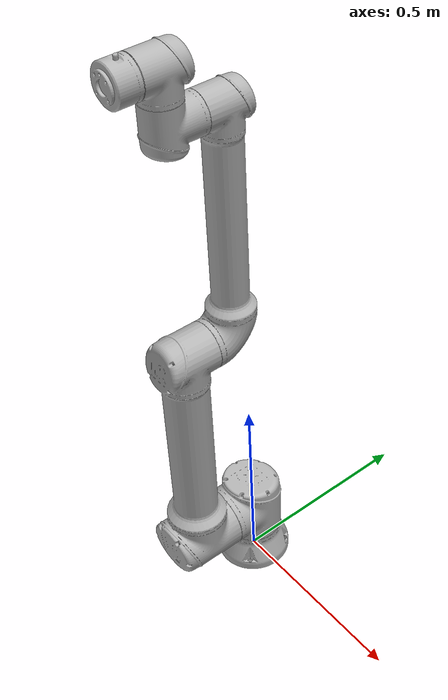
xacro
<?xml version="1.0" ?>
<robot name="URDF_Test_3" xmlns:xacro="http://www.ros.org/wiki/xacro">

<xacro:include filename="$(find ajgar)/urdf/materials.xacro" />
<xacro:include filename="$(find ajgar)/urdf/URDF_Test_3.trans" />
<xacro:include filename="$(find ajgar)/urdf/URDF_Test_3.gazebo" />
<link name="base_link">
  <inertial>
    <origin xyz="-8.269719423545992e-05 0.0010857267036388984 0.06047682470875622" rpy="0 0 0"/>
    <mass value="29.485735477923164"/>
    <inertia ixx="0.024776" iyy="0.028156" izz="0.038965" ixy="7e-06" iyz="0.000408" ixz="-2.2e-05"/>
  </inertial>
  <visual>
    <origin xyz="0 0 0" rpy="0 0 0"/>
    <geometry>
      <mesh filename="package://ajgar/meshes/base_link.stl" scale="0.001 0.001 0.001"/>
    </geometry>
    <material name="silver"/>
  </visual>
  <collision>
    <origin xyz="0 0 0" rpy="0 0 0"/>
    <geometry>
      <mesh filename="package://ajgar/meshes/base_link.stl" scale="0.001 0.001 0.001"/>
    </geometry>
  </collision>
</link>

<link name="shoulder_1">
  <inertial>
    <origin xyz="-5.136379737825127e-07 -0.012893561064329193 0.08338921276398253" rpy="0 0 0"/>
    <mass value="7.491767242063588"/>
    <inertia ixx="0.113371" iyy="0.100756" izz="0.094339" ixy="-0.0" iyz="0.0014" ixz="0.0"/>
  </inertial>
  <visual>
    <origin xyz="0.0 -0.0 -0.0993" rpy="0 0 0"/>
    <geometry>
      <mesh filename="package://ajgar/meshes/shoulder_1.stl" scale="0.001 0.001 0.001"/>
    </geometry>
    <material name="silver"/>
  </visual>
  <collision>
    <origin xyz="0.0 -0.0 -0.0993" rpy="0 0 0"/>
    <geometry>
      <mesh filename="package://ajgar/meshes/shoulder_1.stl" scale="0.001 0.001 0.001"/>
    </geometry>
  </collision>
</link>

<link name="arm_1">
  <inertial>
    <origin xyz="-6.124271792012328e-08 -0.08240844330284518 0.21130484810557812" rpy="0 0 0"/>
    <mass value="3.96604980819084"/>
    <inertia ixx="3.314125" iyy="3.291262" izz="0.144311" ixy="-0.0" iyz="-0.00734" ixz="-1e-06"/>
  </inertial>
  <visual>
    <origin xyz="0.0 0.0946 -0.1807" rpy="0 0 0"/>
    <geometry>
      <mesh filename="package://ajgar/meshes/arm_1.stl" scale="0.001 0.001 0.001"/>
    </geometry>
    <material name="silver"/>
  </visual>
  <collision>
    <origin xyz="0.0 0.0946 -0.1807" rpy="0 0 0"/>
    <geometry>
      <mesh filename="package://ajgar/meshes/arm_1.stl" scale="0.001 0.001 0.001"/>
    </geometry>
  </collision>
</link>

<link name="forearm_1">
  <inertial>
    <origin xyz="2.586346781728835e-07 0.06359393788395254 0.24263670260699677" rpy="0 0 0"/>
    <mass value="1.327241051156584"/>
    <inertia ixx="1.267089" iyy="1.261071" izz="0.0347" ixy="0.0" iyz="-0.041708" ixz="0.0"/>
  </inertial>
  <visual>
    <origin xyz="0.0 0.1126 -0.7934" rpy="0 0 0"/>
    <geometry>
      <mesh filename="package://ajgar/meshes/forearm_1.stl" scale="0.001 0.001 0.001"/>
    </geometry>
    <material name="silver"/>
  </visual>
  <collision>
    <origin xyz="0.0 0.1126 -0.7934" rpy="0 0 0"/>
    <geometry>
      <mesh filename="package://ajgar/meshes/forearm_1.stl" scale="0.001 0.001 0.001"/>
    </geometry>
  </collision>
</link>

<link name="wrist_1">
  <inertial>
    <origin xyz="1.221373912611945e-08 -0.06248572574196583 0.0015387505793551526" rpy="0 0 0"/>
    <mass value="0.27456909234358"/>
    <inertia ixx="0.014273" iyy="0.010388" izz="0.011811" ixy="-0.0" iyz="0.000361" ixz="-0.0"/>
  </inertial>
  <visual>
    <origin xyz="-0.0 0.0957 -1.364735" rpy="0 0 0"/>
    <geometry>
      <mesh filename="package://ajgar/meshes/wrist_1.stl" scale="0.001 0.001 0.001"/>
    </geometry>
    <material name="silver"/>
  </visual>
  <collision>
    <origin xyz="-0.0 0.0957 -1.364735" rpy="0 0 0"/>
    <geometry>
      <mesh filename="package://ajgar/meshes/wrist_1.stl" scale="0.001 0.001 0.001"/>
    </geometry>
  </collision>
</link>

<link name="end_1">
  <inertial>
    <origin xyz="2.901738992434707e-07 -0.001724242336090448 0.05332507883002502" rpy="0 0 0"/>
    <mass value="0.195239059350037"/>
    <inertia ixx="0.011265" iyy="0.008806" izz="0.009591" ixy="-0.0" iyz="0.000289" ixz="-0.0"/>
  </inertial>
  <visual>
    <origin xyz="-0.0 0.17415 -1.421635" rpy="0 0 0"/>
    <geometry>
      <mesh filename="package://ajgar/meshes/end_1.stl" scale="0.001 0.001 0.001"/>
    </geometry>
    <material name="silver"/>
  </visual>
  <collision>
    <origin xyz="-0.0 0.17415 -1.421635" rpy="0 0 0"/>
    <geometry>
      <mesh filename="package://ajgar/meshes/end_1.stl" scale="0.001 0.001 0.001"/>
    </geometry>
  </collision>
</link>

<link name="suction_1">
  <inertial>
    <origin xyz="6.961771223765484e-13 -0.027764546560901465 -0.00011193336601378334" rpy="0 0 0"/>
    <mass value="0.0494649759637526"/>
    <inertia ixx="0.002071" iyy="0.002723" izz="0.002082" ixy="-0.0" iyz="-0.0" ixz="-0.0"/>
  </inertial>
  <visual>
    <origin xyz="-0.0 0.23105 -1.484585" rpy="0 0 0"/>
    <geometry>
      <mesh filename="package://ajgar/meshes/suction_1.stl" scale="0.001 0.001 0.001"/>
    </geometry>
    <material name="silver"/>
  </visual>
  <collision>
    <origin xyz="-0.0 0.23105 -1.484585" rpy="0 0 0"/>
    <geometry>
      <mesh filename="package://ajgar/meshes/suction_1.stl" scale="0.001 0.001 0.001"/>
    </geometry>
  </collision>
</link>

<joint name="Revolute 1" type="continuous">
  <origin xyz="0.0 0.0 0.0993" rpy="0 0 0"/>
  <parent link="base_link"/>
  <child link="shoulder_1"/>
  <axis xyz="0.0 0.0 1.0"/>
</joint>

<joint name="Revolute 2" type="continuous">
  <origin xyz="0.0 -0.0946 0.0814" rpy="0 0 0"/>
  <parent link="shoulder_1"/>
  <child link="arm_1"/>
  <axis xyz="-0.0 -1.0 0.0"/>
</joint>

<joint name="Revolute 3" type="revolute">
  <origin xyz="0.0 -0.018 0.6127" rpy="0 0 0"/>
  <parent link="arm_1"/>
  <child link="forearm_1"/>
  <axis xyz="-0.0 1.0 -0.0"/>
  <limit upper="2.879793" lower="-2.879793" effort="100" velocity="100"/>
</joint>

<joint name="Revolute 4" type="continuous">
  <origin xyz="0.0 0.0169 0.571335" rpy="0 0 0"/>
  <parent link="forearm_1"/>
  <child link="wrist_1"/>
  <axis xyz="0.0 -1.0 0.0"/>
</joint>

<joint name="Revolute 5" type="continuous">
  <origin xyz="0.0 -0.07845 0.0569" rpy="0 0 0"/>
  <parent link="wrist_1"/>
  <child link="end_1"/>
  <axis xyz="-0.0 0.0 1.0"/>
</joint>

<joint name="Revolute 6" type="continuous">
  <origin xyz="0.0 -0.0569 0.06295" rpy="0 0 0"/>
  <parent link="end_1"/>
  <child link="suction_1"/>
  <axis xyz="0.0 -1.0 0.0"/>
</joint>

</robot>

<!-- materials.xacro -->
<robot name="ajgar" xmlns:xacro="http://www.ros.org/wiki/xacro" >

<material name="silver">
  <color rgba="0.700 0.700 0.700 1.000"/>
</material>

</robot>

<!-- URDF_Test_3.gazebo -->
<robot name="URDF_Test_3" xmlns:xacro="http://www.ros.org/wiki/xacro" >

<xacro:property name="body_color" value="Gazebo/Silver" />

<gazebo>
  <plugin name="control" filename="libgazebo_ros_control.so"/>
</gazebo>
<gazebo reference="base_link">
  <material>${body_color}</material>
  <mu1>0.2</mu1>
  <mu2>0.2</mu2>
  <selfCollide>true</selfCollide>
  <gravity>true</gravity>
</gazebo>

<gazebo reference="shoulder_1">
  <material>${body_color}</material>
  <mu1>0.2</mu1>
  <mu2>0.2</mu2>
  <selfCollide>true</selfCollide>
</gazebo>

<gazebo reference="arm_1">
  <material>${body_color}</material>
  <mu1>0.2</mu1>
  <mu2>0.2</mu2>
  <selfCollide>true</selfCollide>
</gazebo>

<gazebo reference="forearm_1">
  <material>${body_color}</material>
  <mu1>0.2</mu1>
  <mu2>0.2</mu2>
  <selfCollide>true</selfCollide>
</gazebo>

<gazebo reference="wrist_1">
  <material>${body_color}</material>
  <mu1>0.2</mu1>
  <mu2>0.2</mu2>
  <selfCollide>true</selfCollide>
</gazebo>

<gazebo reference="end_1">
  <material>${body_color}</material>
  <mu1>0.2</mu1>
  <mu2>0.2</mu2>
  <selfCollide>true</selfCollide>
</gazebo>

<gazebo reference="suction_1">
  <material>${body_color}</material>
  <mu1>0.2</mu1>
  <mu2>0.2</mu2>
  <selfCollide>true</selfCollide>
</gazebo>

</robot>
